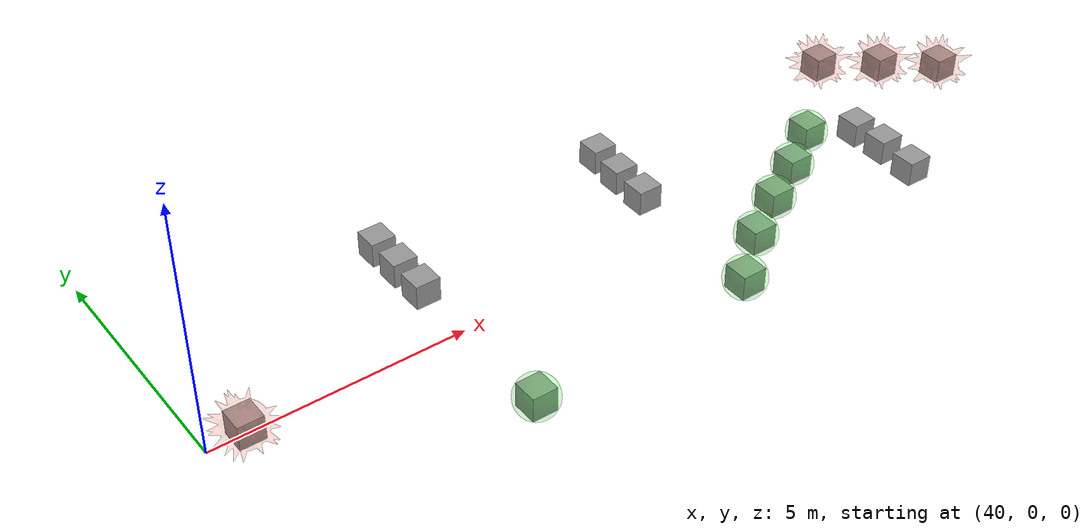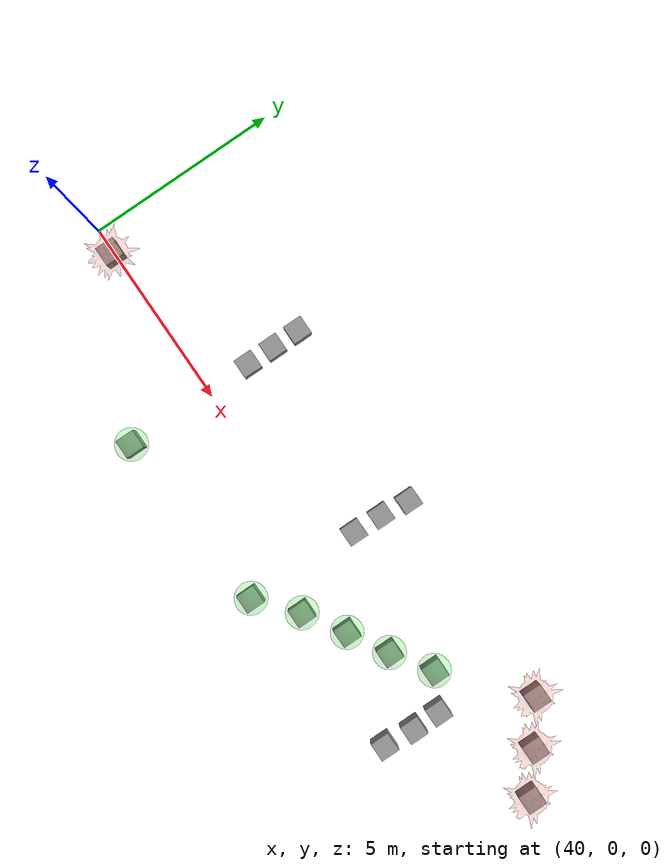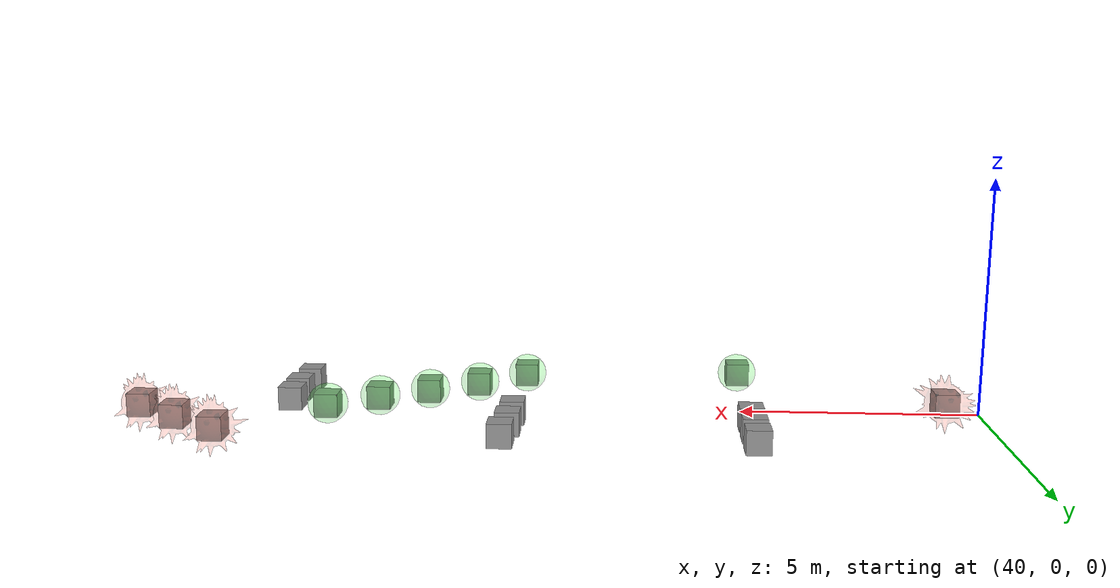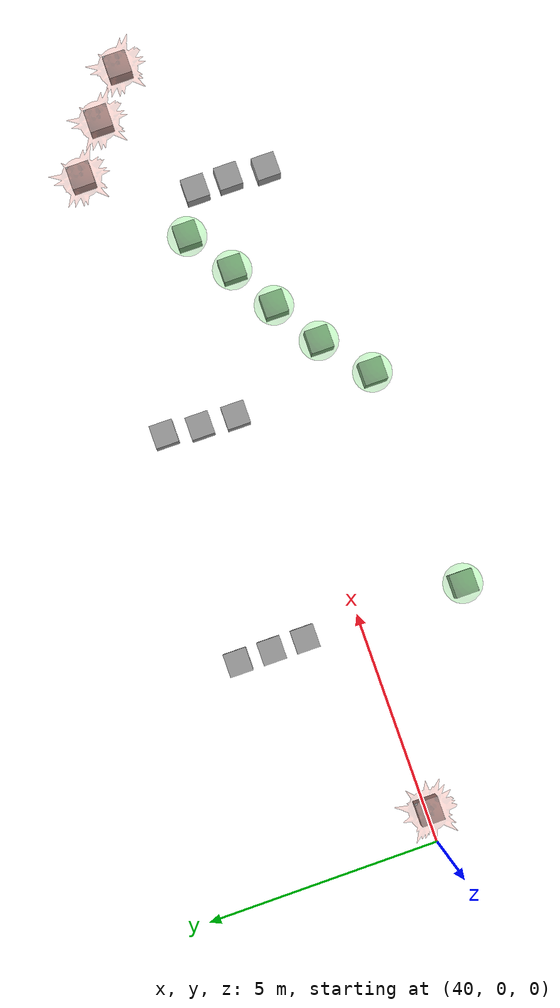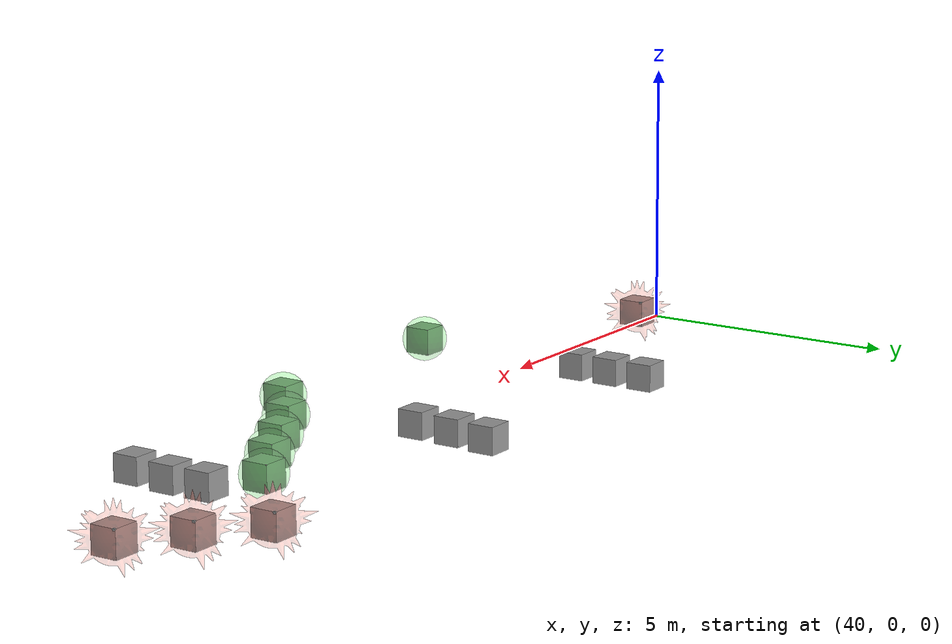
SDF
<sdf version="1.6">
 <world name="default">
  <model name="vis_cue_repel">
   <static>0</static>
   <pose>40.708 -0.041063 0.249993 -6e-06 0 0</pose>
   <link name="vis_cue_repel">
    <inertial>
     <mass>1</mass>
     <inertia>
      <ixx>0.166667</ixx>
      <ixy>0</ixy>
      <ixz>0</ixz>
      <iyy>0.166667</iyy>
      <iyz>0</iyz>
      <izz>0.166667</izz>
     </inertia>
    </inertial>
    <collision name="collision"><geometry><box><size>0.5 0.5 0.5</size></box></geometry></collision>
    <visual name="box_visual">
     <geometry><box><size>0.5 0.5 0.5</size></box></geometry>
     <material>
      <script><name>Gazebo/Grey</name><uri>file://media/materials/scripts/gazebo.material</uri></script>
     </material>
    </visual>
    <visual name="cue_visual">
     <geometry><mesh><uri>model://repelling_cue_2.dae</uri><scale>0.85 0.85 0.85</scale></mesh></geometry>
     <material>
      <ambient>1 0.3 0.2 0.2</ambient>
      <diffuse>1 0.3 0.2 0.2</diffuse>
      <specular>1 0.3 0.2 0.5</specular>
      <emissive>0.5 0 0 0.1</emissive>
     </material>
    </visual>
   </link>
  </model>
  <model name="trap_cont_1_attr_m">
   <static>0</static>
   <static>0</static>
   <link name="attracting_cue_0::vis_cue_attract">
    <inertial>
     <mass>1</mass>
     <inertia>
      <ixx>0.166667</ixx>
      <ixy>0</ixy>
      <ixz>0</ixz>
      <iyy>0.166667</iyy>
      <iyz>0</iyz>
      <izz>0.166667</izz>
     </inertia>
    </inertial>
    <collision name="collision"><geometry><box><size>0.5 0.5 0.5</size></box></geometry></collision>
    <visual name="box_visual">
     <geometry><box><size>0.5 0.5 0.5</size></box></geometry>
     <material>
      <script><name>Gazebo/Grey</name><uri>file://media/materials/scripts/gazebo.material</uri></script>
     </material>
    </visual>
    <visual name="cue_visual">
     <geometry>
      <mesh><uri>model://vis_cue_attract/meshes/sphere.stl</uri><scale>0.85 0.85 0.85</scale></mesh>
     </geometry>
     <material>
      <ambient>0 1 0 0.15</ambient>
      <diffuse>0 1 0 0.15</diffuse>
      <specular>0 1 0 0.15</specular>
      <emissive>0 0 0 0</emissive>
     </material>
    </visual>
    <pose>0 -2.48 0.25 0 -0 0</pose>
   </link>
   <static>0</static>
   <link name="normal_cue_0::vis_cue_normal">
    <inertial>
     <mass>1</mass>
     <inertia>
      <ixx>0.166667</ixx>
      <ixy>0</ixy>
      <ixz>0</ixz>
      <iyy>0.166667</iyy>
      <iyz>0</iyz>
      <izz>0.166667</izz>
     </inertia>
    </inertial>
    <collision name="collision"><geometry><box><size>0.5 0.5 0.5</size></box></geometry></collision>
    <visual name="box_visual">
     <geometry><box><size>0.5 0.5 0.5</size></box></geometry>
     <material>
      <script><name>Gazebo/Grey</name><uri>file://media/materials/scripts/gazebo.material</uri></script>
     </material>
    </visual>
    <pose>0 1.01 0.25 0 -0 0</pose>
   </link>
   <static>0</static>
   <link name="normal_cue_1::vis_cue_normal">
    <inertial>
     <mass>1</mass>
     <inertia>
      <ixx>0.166667</ixx>
      <ixy>0</ixy>
      <ixz>0</ixz>
      <iyy>0.166667</iyy>
      <iyz>0</iyz>
      <izz>0.166667</izz>
     </inertia>
    </inertial>
    <collision name="collision"><geometry><box><size>0.5 0.5 0.5</size></box></geometry></collision>
    <visual name="box_visual">
     <geometry><box><size>0.5 0.5 0.5</size></box></geometry>
     <material>
      <script><name>Gazebo/Grey</name><uri>file://media/materials/scripts/gazebo.material</uri></script>
     </material>
    </visual>
    <pose>0 1.745 0.25 0 -0 0</pose>
   </link>
   <static>0</static>
   <link name="normal_cue_2::vis_cue_normal">
    <inertial>
     <mass>1</mass>
     <inertia>
      <ixx>0.166667</ixx>
      <ixy>0</ixy>
      <ixz>0</ixz>
      <iyy>0.166667</iyy>
      <iyz>0</iyz>
      <izz>0.166667</izz>
     </inertia>
    </inertial>
    <collision name="collision"><geometry><box><size>0.5 0.5 0.5</size></box></geometry></collision>
    <visual name="box_visual">
     <geometry><box><size>0.5 0.5 0.5</size></box></geometry>
     <material>
      <script><name>Gazebo/Grey</name><uri>file://media/materials/scripts/gazebo.material</uri></script>
     </material>
    </visual>
    <pose>0 2.48 0.25 0 -0 0</pose>
   </link>
   <pose>44.8837 0.193338 -2.1e-05 -7e-06 7e-06 0</pose>
  </model>
  <model name="vis_cue_attract_0">
   <static>0</static>
   <pose>49.6831 -1.98903 0.249993 -6e-06 0 0</pose>
   <link name="vis_cue_attract">
    <inertial>
     <mass>1</mass>
     <inertia>
      <ixx>0.166667</ixx>
      <ixy>0</ixy>
      <ixz>0</ixz>
      <iyy>0.166667</iyy>
      <iyz>0</iyz>
      <izz>0.166667</izz>
     </inertia>
    </inertial>
    <collision name="collision"><geometry><box><size>0.5 0.5 0.5</size></box></geometry></collision>
    <visual name="box_visual">
     <geometry><box><size>0.5 0.5 0.5</size></box></geometry>
     <material>
      <script><name>Gazebo/Grey</name><uri>file://media/materials/scripts/gazebo.material</uri></script>
     </material>
    </visual>
    <visual name="cue_visual">
     <geometry>
      <mesh><uri>model://vis_cue_attract/meshes/sphere.stl</uri><scale>0.85 0.85 0.85</scale></mesh>
     </geometry>
     <material>
      <ambient>0 1 0 0.15</ambient>
      <diffuse>0 1 0 0.15</diffuse>
      <specular>0 1 0 0.15</specular>
      <emissive>0 0 0 0</emissive>
     </material>
    </visual>
   </link>
  </model>
  <model name="vis_cue_attract_1">
   <static>0</static>
   <pose>50.6868 -1.1483 0.249992 3e-06 -5e-06 0</pose>
   <link name="vis_cue_attract">
    <inertial>
     <mass>1</mass>
     <inertia>
      <ixx>0.166667</ixx>
      <ixy>0</ixy>
      <ixz>0</ixz>
      <iyy>0.166667</iyy>
      <iyz>0</iyz>
      <izz>0.166667</izz>
     </inertia>
    </inertial>
    <collision name="collision"><geometry><box><size>0.5 0.5 0.5</size></box></geometry></collision>
    <visual name="box_visual">
     <geometry><box><size>0.5 0.5 0.5</size></box></geometry>
     <material>
      <script><name>Gazebo/Grey</name><uri>file://media/materials/scripts/gazebo.material</uri></script>
     </material>
    </visual>
    <visual name="cue_visual">
     <geometry>
      <mesh><uri>model://vis_cue_attract/meshes/sphere.stl</uri><scale>0.85 0.85 0.85</scale></mesh>
     </geometry>
     <material>
      <ambient>0 1 0 0.15</ambient>
      <diffuse>0 1 0 0.15</diffuse>
      <specular>0 1 0 0.15</specular>
      <emissive>0 0 0 0</emissive>
     </material>
    </visual>
   </link>
  </model>
  <model name="vis_cue_attract_2">
   <static>0</static>
   <pose>51.7096 -0.504608 0.249996 -7e-06 7e-06 0</pose>
   <link name="vis_cue_attract">
    <inertial>
     <mass>1</mass>
     <inertia>
      <ixx>0.166667</ixx>
      <ixy>0</ixy>
      <ixz>0</ixz>
      <iyy>0.166667</iyy>
      <iyz>0</iyz>
      <izz>0.166667</izz>
     </inertia>
    </inertial>
    <collision name="collision"><geometry><box><size>0.5 0.5 0.5</size></box></geometry></collision>
    <visual name="box_visual">
     <geometry><box><size>0.5 0.5 0.5</size></box></geometry>
     <material>
      <script><name>Gazebo/Grey</name><uri>file://media/materials/scripts/gazebo.material</uri></script>
     </material>
    </visual>
    <visual name="cue_visual">
     <geometry>
      <mesh><uri>model://vis_cue_attract/meshes/sphere.stl</uri><scale>0.85 0.85 0.85</scale></mesh>
     </geometry>
     <material>
      <ambient>0 1 0 0.15</ambient>
      <diffuse>0 1 0 0.15</diffuse>
      <specular>0 1 0 0.15</specular>
      <emissive>0 0 0 0</emissive>
     </material>
    </visual>
   </link>
  </model>
  <model name="vis_cue_attract_3">
   <static>0</static>
   <pose>52.7114 0.079456 0.249994 7e-06 -7e-06 0</pose>
   <link name="vis_cue_attract">
    <inertial>
     <mass>1</mass>
     <inertia>
      <ixx>0.166667</ixx>
      <ixy>0</ixy>
      <ixz>0</ixz>
      <iyy>0.166667</iyy>
      <iyz>0</iyz>
      <izz>0.166667</izz>
     </inertia>
    </inertial>
    <collision name="collision"><geometry><box><size>0.5 0.5 0.5</size></box></geometry></collision>
    <visual name="box_visual">
     <geometry><box><size>0.5 0.5 0.5</size></box></geometry>
     <material>
      <script><name>Gazebo/Grey</name><uri>file://media/materials/scripts/gazebo.material</uri></script>
     </material>
    </visual>
    <visual name="cue_visual">
     <geometry>
      <mesh><uri>model://vis_cue_attract/meshes/sphere.stl</uri><scale>0.85 0.85 0.85</scale></mesh>
     </geometry>
     <material>
      <ambient>0 1 0 0.15</ambient>
      <diffuse>0 1 0 0.15</diffuse>
      <specular>0 1 0 0.15</specular>
      <emissive>0 0 0 0</emissive>
     </material>
    </visual>
   </link>
  </model>
  <model name="vis_cue_attract_4">
   <static>0</static>
   <pose>53.7028 0.744254 0.249996 -7e-06 7e-06 0</pose>
   <link name="vis_cue_attract">
    <inertial>
     <mass>1</mass>
     <inertia>
      <ixx>0.166667</ixx>
      <ixy>0</ixy>
      <ixz>0</ixz>
      <iyy>0.166667</iyy>
      <iyz>0</iyz>
      <izz>0.166667</izz>
     </inertia>
    </inertial>
    <collision name="collision"><geometry><box><size>0.5 0.5 0.5</size></box></geometry></collision>
    <visual name="box_visual">
     <geometry><box><size>0.5 0.5 0.5</size></box></geometry>
     <material>
      <script><name>Gazebo/Grey</name><uri>file://media/materials/scripts/gazebo.material</uri></script>
     </material>
    </visual>
    <visual name="cue_visual">
     <geometry>
      <mesh><uri>model://vis_cue_attract/meshes/sphere.stl</uri><scale>0.85 0.85 0.85</scale></mesh>
     </geometry>
     <material>
      <ambient>0 1 0 0.15</ambient>
      <diffuse>0 1 0 0.15</diffuse>
      <specular>0 1 0 0.15</specular>
      <emissive>0 0 0 0</emissive>
     </material>
    </visual>
   </link>
  </model>
  <model name="vis_cue_normal_3">
   <static>0</static>
   <pose>49.8728 2.57254 0.249993 6e-06 -6e-06 0</pose>
   <link name="vis_cue_normal">
    <inertial>
     <mass>1</mass>
     <inertia>
      <ixx>0.166667</ixx>
      <ixy>0</ixy>
      <ixz>0</ixz>
      <iyy>0.166667</iyy>
      <iyz>0</iyz>
      <izz>0.166667</izz>
     </inertia>
    </inertial>
    <collision name="collision"><geometry><box><size>0.5 0.5 0.5</size></box></geometry></collision>
    <visual name="box_visual">
     <geometry><box><size>0.5 0.5 0.5</size></box></geometry>
     <material>
      <script><name>Gazebo/Grey</name><uri>file://media/materials/scripts/gazebo.material</uri></script>
     </material>
    </visual>
   </link>
  </model>
  <model name="vis_cue_normal_4">
   <static>0</static>
   <pose>49.7937 1.80764 0.249996 -7e-06 7e-06 0</pose>
   <link name="vis_cue_normal">
    <inertial>
     <mass>1</mass>
     <inertia>
      <ixx>0.166667</ixx>
      <ixy>0</ixy>
      <ixz>0</ixz>
      <iyy>0.166667</iyy>
      <iyz>0</iyz>
      <izz>0.166667</izz>
     </inertia>
    </inertial>
    <collision name="collision"><geometry><box><size>0.5 0.5 0.5</size></box></geometry></collision>
    <visual name="box_visual">
     <geometry><box><size>0.5 0.5 0.5</size></box></geometry>
     <material>
      <script><name>Gazebo/Grey</name><uri>file://media/materials/scripts/gazebo.material</uri></script>
     </material>
    </visual>
   </link>
  </model>
  <model name="vis_cue_normal_5">
   <static>0</static>
   <pose>49.7576 1.02957 0.249993 6e-06 -6e-06 0</pose>
   <link name="vis_cue_normal">
    <inertial>
     <mass>1</mass>
     <inertia>
      <ixx>0.166667</ixx>
      <ixy>0</ixy>
      <ixz>0</ixz>
      <iyy>0.166667</iyy>
      <iyz>0</iyz>
      <izz>0.166667</izz>
     </inertia>
    </inertial>
    <collision name="collision"><geometry><box><size>0.5 0.5 0.5</size></box></geometry></collision>
    <visual name="box_visual">
     <geometry><box><size>0.5 0.5 0.5</size></box></geometry>
     <material>
      <script><name>Gazebo/Grey</name><uri>file://media/materials/scripts/gazebo.material</uri></script>
     </material>
    </visual>
   </link>
  </model>
  <model name="vis_cue_repel_0">
   <static>0</static>
   <pose>55.6326 2.44766 0.249993 6e-06 -6e-06 0</pose>
   <link name="vis_cue_repel">
    <inertial>
     <mass>1</mass>
     <inertia>
      <ixx>0.166667</ixx>
      <ixy>0</ixy>
      <ixz>0</ixz>
      <iyy>0.166667</iyy>
      <iyz>0</iyz>
      <izz>0.166667</izz>
     </inertia>
    </inertial>
    <collision name="collision"><geometry><box><size>0.5 0.5 0.5</size></box></geometry></collision>
    <visual name="box_visual">
     <geometry><box><size>0.5 0.5 0.5</size></box></geometry>
     <material>
      <script><name>Gazebo/Grey</name><uri>file://media/materials/scripts/gazebo.material</uri></script>
     </material>
    </visual>
    <visual name="cue_visual">
     <geometry><mesh><uri>model://repelling_cue_2.dae</uri><scale>0.85 0.85 0.85</scale></mesh></geometry>
     <material>
      <ambient>1 0.3 0.2 0.2</ambient>
      <diffuse>1 0.3 0.2 0.2</diffuse>
      <specular>1 0.3 0.2 0.5</specular>
      <emissive>0.5 0 0 0.1</emissive>
     </material>
    </visual>
   </link>
  </model>
  <model name="vis_cue_repel_1">
   <static>0</static>
   <pose>56.6679 1.69987 0.249992 -4e-06 4e-06 0</pose>
   <link name="vis_cue_repel">
    <inertial>
     <mass>1</mass>
     <inertia>
      <ixx>0.166667</ixx>
      <ixy>0</ixy>
      <ixz>0</ixz>
      <iyy>0.166667</iyy>
      <iyz>0</iyz>
      <izz>0.166667</izz>
     </inertia>
    </inertial>
    <collision name="collision"><geometry><box><size>0.5 0.5 0.5</size></box></geometry></collision>
    <visual name="box_visual">
     <geometry><box><size>0.5 0.5 0.5</size></box></geometry>
     <material>
      <script><name>Gazebo/Grey</name><uri>file://media/materials/scripts/gazebo.material</uri></script>
     </material>
    </visual>
    <visual name="cue_visual">
     <geometry><mesh><uri>model://repelling_cue_2.dae</uri><scale>0.85 0.85 0.85</scale></mesh></geometry>
     <material>
      <ambient>1 0.3 0.2 0.2</ambient>
      <diffuse>1 0.3 0.2 0.2</diffuse>
      <specular>1 0.3 0.2 0.5</specular>
      <emissive>0.5 0 0 0.1</emissive>
     </material>
    </visual>
   </link>
  </model>
  <model name="vis_cue_repel_2">
   <static>0</static>
   <pose>57.6352 0.94533 0.249992 4e-06 3e-06 -0</pose>
   <link name="vis_cue_repel">
    <inertial>
     <mass>1</mass>
     <inertia>
      <ixx>0.166667</ixx>
      <ixy>0</ixy>
      <ixz>0</ixz>
      <iyy>0.166667</iyy>
      <iyz>0</iyz>
      <izz>0.166667</izz>
     </inertia>
    </inertial>
    <collision name="collision"><geometry><box><size>0.5 0.5 0.5</size></box></geometry></collision>
    <visual name="box_visual">
     <geometry><box><size>0.5 0.5 0.5</size></box></geometry>
     <material>
      <script><name>Gazebo/Grey</name><uri>file://media/materials/scripts/gazebo.material</uri></script>
     </material>
    </visual>
    <visual name="cue_visual">
     <geometry><mesh><uri>model://repelling_cue_2.dae</uri><scale>0.85 0.85 0.85</scale></mesh></geometry>
     <material>
      <ambient>1 0.3 0.2 0.2</ambient>
      <diffuse>1 0.3 0.2 0.2</diffuse>
      <specular>1 0.3 0.2 0.5</specular>
      <emissive>0.5 0 0 0.1</emissive>
     </material>
    </visual>
   </link>
  </model>
  <model name="vis_cue_normal_6">
   <static>0</static>
   <pose>54.5835 0.254387 0.249996 -7e-06 7e-06 0</pose>
   <link name="vis_cue_normal">
    <inertial>
     <mass>1</mass>
     <inertia>
      <ixx>0.166667</ixx>
      <ixy>0</ixy>
      <ixz>0</ixz>
      <iyy>0.166667</iyy>
      <iyz>0</iyz>
      <izz>0.166667</izz>
     </inertia>
    </inertial>
    <collision name="collision"><geometry><box><size>0.5 0.5 0.5</size></box></geometry></collision>
    <visual name="box_visual">
     <geometry><box><size>0.5 0.5 0.5</size></box></geometry>
     <material>
      <script><name>Gazebo/Grey</name><uri>file://media/materials/scripts/gazebo.material</uri></script>
     </material>
    </visual>
   </link>
  </model>
  <model name="vis_cue_normal_7">
   <static>0</static>
   <pose>54.5924 -0.485049 0.249993 6e-06 -6e-06 0</pose>
   <link name="vis_cue_normal">
    <inertial>
     <mass>1</mass>
     <inertia>
      <ixx>0.166667</ixx>
      <ixy>0</ixy>
      <ixz>0</ixz>
      <iyy>0.166667</iyy>
      <iyz>0</iyz>
      <izz>0.166667</izz>
     </inertia>
    </inertial>
    <collision name="collision"><geometry><box><size>0.5 0.5 0.5</size></box></geometry></collision>
    <visual name="box_visual">
     <geometry><box><size>0.5 0.5 0.5</size></box></geometry>
     <material>
      <script><name>Gazebo/Grey</name><uri>file://media/materials/scripts/gazebo.material</uri></script>
     </material>
    </visual>
   </link>
  </model>
  <model name="vis_cue_normal_8">
   <static>0</static>
   <pose>54.5258 -1.30491 0.249996 -7e-06 7e-06 0</pose>
   <link name="vis_cue_normal">
    <inertial>
     <mass>1</mass>
     <inertia>
      <ixx>0.166667</ixx>
      <ixy>0</ixy>
      <ixz>0</ixz>
      <iyy>0.166667</iyy>
      <iyz>0</iyz>
      <izz>0.166667</izz>
     </inertia>
    </inertial>
    <collision name="collision"><geometry><box><size>0.5 0.5 0.5</size></box></geometry></collision>
    <visual name="box_visual">
     <geometry><box><size>0.5 0.5 0.5</size></box></geometry>
     <material>
      <script><name>Gazebo/Grey</name><uri>file://media/materials/scripts/gazebo.material</uri></script>
     </material>
    </visual>
   </link>
  </model>
 </world>
</sdf>
